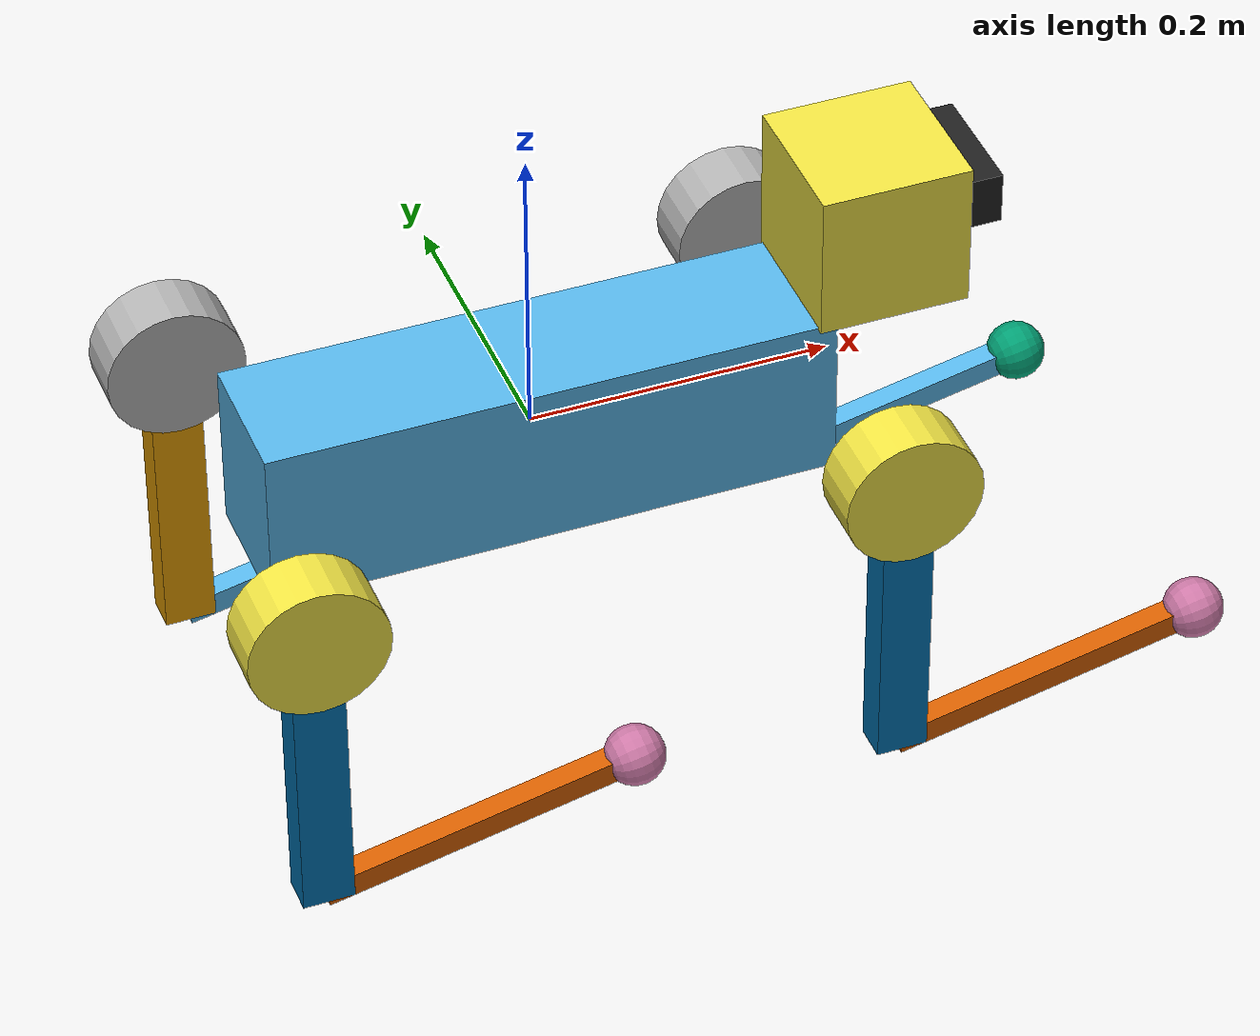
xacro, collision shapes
<?xml version="1.0"?>

<robot name="go2" xmlns:xacro="http://www.ros.org/wiki/xacro">

    <xacro:arg name="DEBUG" default="false"/>
    <xacro:arg name="robot_namespace" default=""/>
    <xacro:arg name="frame_prefix" default=""/>
    <xacro:arg name="scan_topic" default="scan"/>
    <xacro:arg name="ros_control_file" default="$(find go2_description)/config/ros_control/ros_control.yaml"/>

    <xacro:include filename="$(find go2_description)/xacro/const.xacro"/>
    <xacro:include filename="$(find go2_description)/xacro/materials.xacro"/>
    <xacro:include filename="$(find go2_description)/xacro/leg.xacro"/>
    <xacro:include filename="$(find go2_description)/xacro/gazebo.xacro"/>

    <xacro:if value="$(arg DEBUG)">
        <link name="world"/>
        <joint name="base_static_joint" type="fixed">
            <origin rpy="0 0 0" xyz="0 0 0"/>
            <parent link="world"/>
            <child link="base_link"/>
        </joint>
    </xacro:if>

    <link name="base_link">
        <visual>
            <origin rpy="0 0 0" xyz="0 0 0"/>
            <geometry>
                <box size="0.001 0.001 0.001"/>
            </geometry>
        </visual>
    </link>

    <joint name="floating_base" type="fixed">
        <origin rpy="0 0 0" xyz="0 0 0"/>
        <parent link="base_link"/>
        <child link="trunk"/>
    </joint>

    <link name="trunk">
        <visual>
            <origin rpy="0 0 0" xyz="0 0 0"/>
            <geometry>
                <mesh filename="file://$(find go2_description)/meshes/trunk.dae" scale="1 1 1"/>
            </geometry>
        </visual>
        <collision>
            <origin rpy="0 0 0" xyz="0 0 0"/>
            <geometry>
                <box size="${trunk_length} ${trunk_width} ${trunk_height}"/>
            </geometry>
        </collision>
        <inertial>
            <origin rpy="0 0 0" xyz="${trunk_com_x} ${trunk_com_y} ${trunk_com_z}"/>
            <mass value="${trunk_mass}"/>
            <inertia
                ixx="${trunk_ixx}" ixy="${trunk_ixy}" ixz="${trunk_ixz}"
                iyy="${trunk_iyy}" iyz="${trunk_iyz}"
                izz="${trunk_izz}"/>
        </inertial>
    </link>

    <joint name="imu_joint" type="fixed">
        <parent link="trunk"/>
        <child link="imu_link"/>
        <origin rpy="0 0 0" xyz="0 0 0"/>
    </joint>

    <link name="imu_link">
        <inertial>
            <mass value="0.001"/>
            <origin rpy="0 0 0" xyz="0 0 0"/>
            <inertia ixx="0.0001" ixy="0" ixz="0" iyy="0.0001" iyz="0" izz="0.0001"/>
        </inertial>
        <visual>
            <origin rpy="0 0 0" xyz="0 0 0"/>
            <geometry>
                <box size="0.001 0.001 0.001"/>
            </geometry>
        </visual>
        <collision>
            <origin rpy="0 0 0" xyz="0 0 0"/>
            <geometry>
                <box size=".001 .001 .001"/>
            </geometry>
        </collision>
    </link>

    <xacro:leg name="rf" mirror="-1" mirror_dae="False" front_hind="1" front_hind_dae="True"/>
    <xacro:leg name="lf" mirror="1" mirror_dae="True" front_hind="1" front_hind_dae="True"/>
    <xacro:leg name="rh" mirror="-1" mirror_dae="False" front_hind="-1" front_hind_dae="False"/>
    <xacro:leg name="lh" mirror="1" mirror_dae="True" front_hind="-1" front_hind_dae="False"/>

    <xacro:include filename="$(find go2_description)/xacro/laser_2d_slam.xacro"/>
    <xacro:include filename="$(find go2_description)/xacro/camera.xacro"/>

</robot>

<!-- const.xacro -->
<robot xmlns:xacro="http://www.ros.org/wiki/xacro">

    <!-- Constants for robot dimensions -->
    <xacro:property name="PI" value="3.1415926535897931"/>
    <xacro:property name="stick_mass" value="0.00001"/>

    <!-- simplified collision value -->
    <xacro:property name="trunk_width" value="0.0935"/>
    <xacro:property name="trunk_length" value="0.3762"/>
    <xacro:property name="trunk_height" value="0.114"/>
    <xacro:property name="hip_radius" value="0.046"/>
    <xacro:property name="hip_length" value="0.04"/>
    <xacro:property name="thigh_shoulder_radius" value="0.041"/>
    <xacro:property name="thigh_shoulder_length" value="0.032"/>
    <xacro:property name="thigh_width" value="0.0245"/>
    <xacro:property name="thigh_height" value="0.034"/>
    <xacro:property name="calf_width" value="0.016"/>
    <xacro:property name="calf_height" value="0.016"/>
    <xacro:property name="foot_radius" value="0.02"/>
    <xacro:property name="stick_radius" value="0.01"/>
    <xacro:property name="stick_length" value="0.2"/>

    <!-- kinematic value -->
    <xacro:property name="thigh_offset" value="0.0955"/>
    <xacro:property name="thigh_length" value="0.213"/>
    <xacro:property name="calf_length" value="0.213"/>

    <!-- leg offset from trunk center value -->
    <xacro:property name="leg_offset_x" value="0.1934"/>
    <xacro:property name="leg_offset_y" value="0.0465"/>
    <xacro:property name="hip_offset" value="0.0955"/>

    <!-- offset of link locations (left front) -->
    <xacro:property name="hip_offset_x" value="0.1934"/>
    <xacro:property name="hip_offset_y" value="0.0465"/>
    <xacro:property name="hip_offset_z" value="0.0"/>

    <xacro:property name="thigh_offset_x" value="0"/>
    <xacro:property name="thigh_offset_y" value="0.0955"/>
    <xacro:property name="thigh_offset_z" value="0.0"/>

    <xacro:property name="calf_offset_x" value="0.0"/>
    <xacro:property name="calf_offset_y" value="0.0"/>
    <xacro:property name="calf_offset_z" value="-0.213"/>

    <!-- joint limits -->
    <xacro:property name="damping" value="0.0"/>
    <xacro:property name="friction" value="0.0"/>
    <xacro:property name="hip_position_max" value="1.0472"/>
    <xacro:property name="hip_position_min" value="-1.0472"/>
    <xacro:property name="hip_velocity_max" value="30.1"/>
    <xacro:property name="hip_torque_max" value="23.7"/>
    <xacro:property name="thigh_position_max" value="3.4907"/>
    <xacro:property name="thigh_position_min" value="-1.5708"/>
    <xacro:property name="thigh_velocity_max" value="30.1"/>
    <xacro:property name="thigh_torque_max" value="23.7"/>
    <xacro:property name="calf_position_max" value="-0.83776"/>
    <xacro:property name="calf_position_min" value="-2.7227"/>
    <xacro:property name="calf_velocity_max" value="20.06"/>
    <xacro:property name="calf_torque_max" value="35.55"/>

    <!-- dynamics inertial value -->
    <!-- trunk -->
    <xacro:property name="trunk_mass" value="6.921"/>
    <xacro:property name="trunk_com_x" value="0.021112"/>
    <xacro:property name="trunk_com_y" value="0.00"/>
    <xacro:property name="trunk_com_z" value="-0.005366"/>
    <xacro:property name="trunk_ixx" value="0.02448"/>
    <xacro:property name="trunk_ixy" value="0.00012166"/>
    <xacro:property name="trunk_ixz" value="0.0014849"/>
    <xacro:property name="trunk_iyy" value="0.098077"/>
    <xacro:property name="trunk_iyz" value="-3.12E-05"/>
    <xacro:property name="trunk_izz" value="0.107"/>

    <!-- hip (left front) -->
    <xacro:property name="hip_mass" value="0.678"/>
    <xacro:property name="hip_com_x" value="-0.0054"/>
    <xacro:property name="hip_com_y" value="0.00194"/>
    <xacro:property name="hip_com_z" value="-0.000105"/>
    <xacro:property name="hip_ixx" value="0.00048"/>
    <xacro:property name="hip_ixy" value="-3.01E-06"/>
    <xacro:property name="hip_ixz" value="1.11E-06"/>
    <xacro:property name="hip_iyy" value="0.000884"/>
    <xacro:property name="hip_iyz" value="-1.42E-06"/>
    <xacro:property name="hip_izz" value="0.000596"/>

    <!-- thigh -->
    <xacro:property name="thigh_mass" value="1.152"/>
    <xacro:property name="thigh_com_x" value="-0.00374"/>
    <xacro:property name="thigh_com_y" value="-0.0223"/>
    <xacro:property name="thigh_com_z" value="-0.0327"/>
    <xacro:property name="thigh_ixx" value="0.00584"/>
    <xacro:property name="thigh_ixy" value="8.72E-05"/>
    <xacro:property name="thigh_ixz" value="-0.000289"/>
    <xacro:property name="thigh_iyy" value="0.0058"/>
    <xacro:property name="thigh_iyz" value="0.000808"/>
    <xacro:property name="thigh_izz" value="0.00103"/>

    <!-- calf -->
    <xacro:property name="calf_mass" value="0.154"/>
    <xacro:property name="calf_com_x" value="0.00548"/>
    <xacro:property name="calf_com_y" value="-0.000975"/>
    <xacro:property name="calf_com_z" value="-0.115"/>
    <xacro:property name="calf_ixx" value="0.00108"/>
    <xacro:property name="calf_ixy" value="3.4E-07"/>
    <xacro:property name="calf_ixz" value="1.72E-05"/>
    <xacro:property name="calf_iyy" value="0.0011"/>
    <xacro:property name="calf_iyz" value="8.28E-06"/>
    <xacro:property name="calf_izz" value="3.29E-05"/>

    <!-- foot -->
    <xacro:property name="foot_mass" value="0.06"/>

</robot>

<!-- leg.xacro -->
<robot xmlns:xacro="http://www.ros.org/wiki/xacro">

    <xacro:macro name="leg" params="name mirror mirror_dae front_hind front_hind_dae">

        <joint name="${name}_hip_joint" type="revolute">
            <xacro:if value="${(mirror_dae == False) and (front_hind_dae == True)}">
                <origin rpy="0 0 0" xyz="${leg_offset_x} ${-leg_offset_y} 0"/>
            </xacro:if>
            <xacro:if value="${(mirror_dae == True) and (front_hind_dae == True)}">
                <origin rpy="0 0 0" xyz="${leg_offset_x} ${leg_offset_y} 0"/>
            </xacro:if>
            <xacro:if value="${(mirror_dae == False) and (front_hind_dae == False)}">
                <origin rpy="0 0 0" xyz="${-leg_offset_x} ${-leg_offset_y} 0"/>
            </xacro:if>
            <xacro:if value="${(mirror_dae == True) and (front_hind_dae == False)}">
                <origin rpy="0 0 0" xyz="${-leg_offset_x} ${leg_offset_y} 0"/>
            </xacro:if>
            <parent link="trunk"/>
            <child link="${name}_hip_link"/>
            <axis xyz="1 0 0"/>
            <dynamics damping="${damping}" friction="${friction}"/>
            <xacro:if value="${(mirror_dae == True)}">
                <limit effort="${hip_torque_max}" velocity="${hip_velocity_max}" lower="${hip_position_min}" upper="${hip_position_max}"/>
            </xacro:if>
            <xacro:if value="${(mirror_dae == False)}">
                <limit effort="${hip_torque_max}" velocity="${hip_velocity_max}" lower="${-hip_position_max}" upper="${-hip_position_min}"/>
            </xacro:if>
        </joint>

        <link name="${name}_hip_link">
            <visual>
                <xacro:if value="${(mirror_dae == True) and (front_hind_dae == True)}">
                    <origin rpy="0 0 0" xyz="0 0 0"/>
                </xacro:if>
                <xacro:if value="${(mirror_dae == False) and (front_hind_dae == True)}">
                    <origin rpy="${PI} 0 0" xyz="0 0 0"/>
                </xacro:if>
                <xacro:if value="${(mirror_dae == True) and (front_hind_dae == False)}">
                    <origin rpy="0 ${PI} 0" xyz="0 0 0"/>
                </xacro:if>
                <xacro:if value="${(mirror_dae == False) and (front_hind_dae == False)}">
                    <origin rpy="${PI} ${PI} 0" xyz="0 0 0"/>
                </xacro:if>
                <geometry>
                    <mesh filename="file://$(find go2_description)/meshes/hip.dae" scale="1 1 1"/>
                </geometry>
            </visual>
            <collision>
                <origin rpy="${PI/2.0} 0 0" xyz="0 ${hip_offset*mirror} 0"/>
                <geometry>
                    <cylinder length="${hip_length}" radius="${hip_radius}"/>
                </geometry>
            </collision>
            <inertial>
                <origin rpy="0 0 0" xyz="${hip_com_x*front_hind} ${hip_com_y*mirror} ${hip_com_z}"/>
                <mass value="${hip_mass}"/>
                <inertia
                    ixx="${hip_ixx}" ixy="${hip_ixy*mirror*front_hind}" ixz="${hip_ixz*front_hind}"
                    iyy="${hip_iyy}" iyz="${hip_iyz*mirror}"
                    izz="${hip_izz}"/>
            </inertial>
        </link>

        <joint name="${name}_upper_leg_joint" type="revolute">
            <origin rpy="0 0 0" xyz="0 ${thigh_offset*mirror} 0"/>
            <parent link="${name}_hip_link"/>
            <child link="${name}_upper_leg_link"/>
            <axis xyz="0 1 0"/>
            <dynamics damping="${damping}" friction="${friction}"/>
            <limit effort="${thigh_torque_max}" velocity="${thigh_velocity_max}" lower="${thigh_position_min}" upper="${thigh_position_max}"/>
        </joint>

        <link name="${name}_upper_leg_link">
            <visual>
                <origin rpy="0 0 0" xyz="0 0 0"/>
                <geometry>
                    <xacro:if value="${mirror_dae == True}">
                        <mesh filename="file://$(find go2_description)/meshes/thigh.dae" scale="1 1 1"/>
                    </xacro:if>
                    <xacro:if value="${mirror_dae == False}">
                        <mesh filename="file://$(find go2_description)/meshes/thigh_mirror.dae" scale="1 1 1"/>
                    </xacro:if>
                </geometry>
            </visual>
            <collision>
                <origin rpy="0 ${PI/2.0} 0" xyz="0 0 ${-thigh_length/2.0}"/>
                <geometry>
                    <box size="${thigh_length} ${thigh_width} ${thigh_height}"/>
                </geometry>
            </collision>
            <inertial>
                <origin rpy="0 0 0" xyz="${thigh_com_x} ${thigh_com_y*mirror} ${thigh_com_z}"/>
                <mass value="${thigh_mass}"/>
                <inertia
                    ixx="${thigh_ixx}" ixy="${thigh_ixy*mirror}" ixz="${thigh_ixz}"
                    iyy="${thigh_iyy}" iyz="${thigh_iyz*mirror}"
                    izz="${thigh_izz}"/>
            </inertial>
        </link>

        <joint name="${name}_lower_leg_joint" type="revolute">
            <origin rpy="0 0 0" xyz="0 0 ${-thigh_length}"/>
            <parent link="${name}_upper_leg_link"/>
            <child link="${name}_lower_leg_link"/>
            <axis xyz="0 1 0"/>
            <dynamics damping="${damping}" friction="${friction}"/>
            <limit effort="${calf_torque_max}" velocity="${calf_velocity_max}" lower="${calf_position_min}" upper="${calf_position_max}"/>
        </joint>

        <link name="${name}_lower_leg_link">
            <visual>
                <origin rpy="0 0 0" xyz="0 0 0"/>
                <geometry>
                    <mesh filename="file://$(find go2_description)/meshes/calf.dae" scale="1 1 1"/>
                </geometry>
            </visual>
            <collision>
                <origin rpy="0 ${PI/2.0} 0" xyz="0 0 ${-calf_length/2.0}"/>
                <geometry>
                    <box size="${calf_length} ${calf_width} ${calf_height}"/>
                </geometry>
            </collision>
            <inertial>
                <origin rpy="0 0 0" xyz="${calf_com_x} ${calf_com_y} ${calf_com_z}"/>
                <mass value="${calf_mass}"/>
                <inertia
                    ixx="${calf_ixx}" ixy="${calf_ixy}" ixz="${calf_ixz}"
                    iyy="${calf_iyy}" iyz="${calf_iyz}"
                    izz="${calf_izz}"/>
            </inertial>
        </link>

        <joint name="${name}_foot_joint" type="fixed">0
            <origin rpy="0 0 0" xyz="0 0 ${-(calf_length)}"/>
            <parent link="${name}_lower_leg_link"/>
            <child link="${name}_foot_link"/>
        </joint>

        <link name="${name}_foot_link">
            <visual>
                <origin rpy="0 0 0" xyz="0 0 0"/>
                <geometry>
                    <sphere radius="${foot_radius-0.01}"/>
                </geometry>
            </visual>
            <collision>
                <origin rpy="0 0 0" xyz="0 0 0"/>
                <geometry>
                    <sphere radius="${foot_radius}"/>
                </geometry>
            </collision>
            <inertial>
                <mass value="${foot_mass}"/>
                <inertia
                    ixx="${(2*foot_mass)/5.0*(foot_radius*foot_radius)}" ixy="0.0" ixz="0.0"
                    iyy="${(2*foot_mass)/5.0*(foot_radius*foot_radius)}" iyz="0.0"
                    izz="${(2*foot_mass)/5.0*(foot_radius*foot_radius)}"/>
            </inertial>
        </link>

        <ros2_control name="${name}" type="system">
            <hardware>
                <plugin>gazebo_ros2_control/GazeboSystem</plugin>
            </hardware>
            <joint name="${name}_hip_joint">
                <command_interface name="effort"/>
                <state_interface name="position">
                    <param name="initial_value">0.0</param>
                </state_interface>
                <state_interface name="velocity"/>
            </joint>

            <joint name="${name}_upper_leg_joint">
                <command_interface name="effort"/>
                <state_interface name="position">
                    <param name="initial_value">0.9</param>
                </state_interface>
                <state_interface name="velocity"/>
            </joint>

            <joint name="${name}_lower_leg_joint">
                <command_interface name="effort"/>
                <state_interface name="position">
                    <param name="initial_value">-1.8</param>
                </state_interface>
                <state_interface name="velocity"/>
            </joint>

        </ros2_control>

    </xacro:macro>
</robot>

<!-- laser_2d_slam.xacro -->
<robot xmlns:xacro="http://www.ros.org/wiki/xacro">
    <xacro:arg name="robot_namespace" default=""/>
    <xacro:arg name="frame_prefix" default=""/>
    <xacro:arg name="scan_topic" default="scan"/>

    <joint name="chassis_front_laser_joint" type="fixed">
        <axis xyz="0 0 1"/>
        <origin rpy="0 0 0" xyz="0.225 0 0.105"/>
        <parent link="base_link"/>
        <child link="front_laser"/>
    </joint>

    <link name="front_laser">
        <collision>
            <origin rpy="0 0 0" xyz="0 0 0"/>
            <geometry>
                <box size="0.1 0.1 0.1"/>
            </geometry>
        </collision>
        <visual>
            <origin rpy="0 0 0" xyz="0 0 0"/>
            <geometry>
                <mesh filename="file://$(find go2_description)/meshes/hokuyo.dae"/>
            </geometry>
        </visual>
        <inertial>
            <mass value="1e-5"/>
            <origin rpy="0 0 0" xyz="0 0 0"/>
            <inertia ixx="1e-6" ixy="0" ixz="0" iyy="1e-6" iyz="0" izz="1e-6"/>
        </inertial>
    </link>

    <gazebo reference="front_laser">
        <sensor name="front_laser_sensor" type="ray">
            <always_on>true</always_on>
            <visualize>true</visualize>
            <pose>-0.032 0 0.171 0 0 0</pose>
            <update_rate>20</update_rate>
            <ray>
                <scan>
                    <horizontal>
                        <samples>720</samples>
                        <resolution>1.0</resolution>
                        <min_angle>-3.14159</min_angle>
                        <max_angle>3.14159</max_angle>
                    </horizontal>
                </scan>
                <range>
                    <min>0.12</min>
                    <max>10.0</max>
                    <resolution>0.01</resolution>
                </range>
                <noise>
                    <type>gaussian</type>
                    <mean>0.0</mean>
                    <stddev>0.01</stddev>
                </noise>
            </ray>
            <plugin name="gazebo_ros_front_laserscan" filename="libgazebo_ros_ray_sensor.so">
                <ros>
                    <namespace>$(arg robot_namespace)</namespace>
                    <remapping>~/out:=$(arg scan_topic)</remapping>
                </ros>
                <output_type>sensor_msgs/LaserScan</output_type>
                <frame_name>$(arg frame_prefix)front_laser</frame_name>
            </plugin>
        </sensor>
    </gazebo>
</robot>

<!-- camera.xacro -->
<robot xmlns:xacro="http://www.ros.org/wiki/xacro">
    <joint name="camera_joint" type="fixed">
        <origin rpy="0 0 0" xyz="0.28 0 0.12"/>
        <parent link="base_link"/>
        <child link="camera_link"/>
    </joint>

    <link name="camera_link">
        <inertial>
            <mass value="0.05"/>
            <origin rpy="0 0 0" xyz="0 0 0"/>
            <inertia ixx="1e-5" ixy="0" ixz="0" iyy="1e-5" iyz="0" izz="1e-5"/>
        </inertial>
        <visual>
            <origin rpy="0 0 0" xyz="0 0 0"/>
            <geometry>
                <box size="0.04 0.08 0.035"/>
            </geometry>
            <material name="black"/>
        </visual>
        <collision>
            <origin rpy="0 0 0" xyz="0 0 0"/>
            <geometry>
                <box size="0.04 0.08 0.035"/>
            </geometry>
        </collision>
    </link>

    <joint name="camera_rgb_joint" type="fixed">
        <origin rpy="0 0 0" xyz="0.02 -0.02 0"/>
        <parent link="camera_link"/>
        <child link="camera_rgb_frame"/>
    </joint>
    <link name="camera_rgb_frame"/>

    <joint name="camera_rgb_optical_joint" type="fixed">
        <origin rpy="-1.5707963267948966 0 -1.5707963267948966" xyz="0 0 0"/>
        <parent link="camera_rgb_frame"/>
        <child link="camera_rgb_optical_frame"/>
    </joint>
    <link name="camera_rgb_optical_frame"/>

    <joint name="camera_depth_joint" type="fixed">
        <origin rpy="0 0 0" xyz="0.02 0.02 0"/>
        <parent link="camera_link"/>
        <child link="camera_depth_frame"/>
    </joint>
    <link name="camera_depth_frame"/>

    <joint name="camera_depth_optical_joint" type="fixed">
        <origin rpy="-1.5707963267948966 0 -1.5707963267948966" xyz="0 0 0"/>
        <parent link="camera_depth_frame"/>
        <child link="camera_depth_optical_frame"/>
    </joint>
    <link name="camera_depth_optical_frame"/>

    <gazebo reference="camera_depth_frame">
        <sensor name="camera" type="depth">
            <always_on>true</always_on>
            <visualize>true</visualize>
            <update_rate>30</update_rate>
            <camera name="camera">
                <horizontal_fov>1.047</horizontal_fov>
                <image>
                    <width>640</width>
                    <height>480</height>
                    <format>R8G8B8</format>
                </image>
                <clip>
                    <near>0.05</near>
                    <far>10.0</far>
                </clip>
            </camera>
            <plugin name="camera_controller" filename="libgazebo_ros_camera.so">
                <ros>
                    <argument>camera/image_raw:=camera/rgb/image_raw</argument>
                    <argument>camera/camera_info:=camera/rgb/camera_info</argument>
                    <argument>camera/depth/image_raw:=camera/depth/image_raw</argument>
                    <argument>camera/depth/camera_info:=camera/depth/camera_info</argument>
                    <argument>camera/points:=camera/depth/points</argument>
                </ros>
                <camera_name>camera</camera_name>
                <frame_name>camera_depth_optical_frame</frame_name>
                <hack_baseline>0.04</hack_baseline>
                <min_depth>0.05</min_depth>
                <max_depth>10.0</max_depth>
            </plugin>
        </sensor>
    </gazebo>
</robot>
